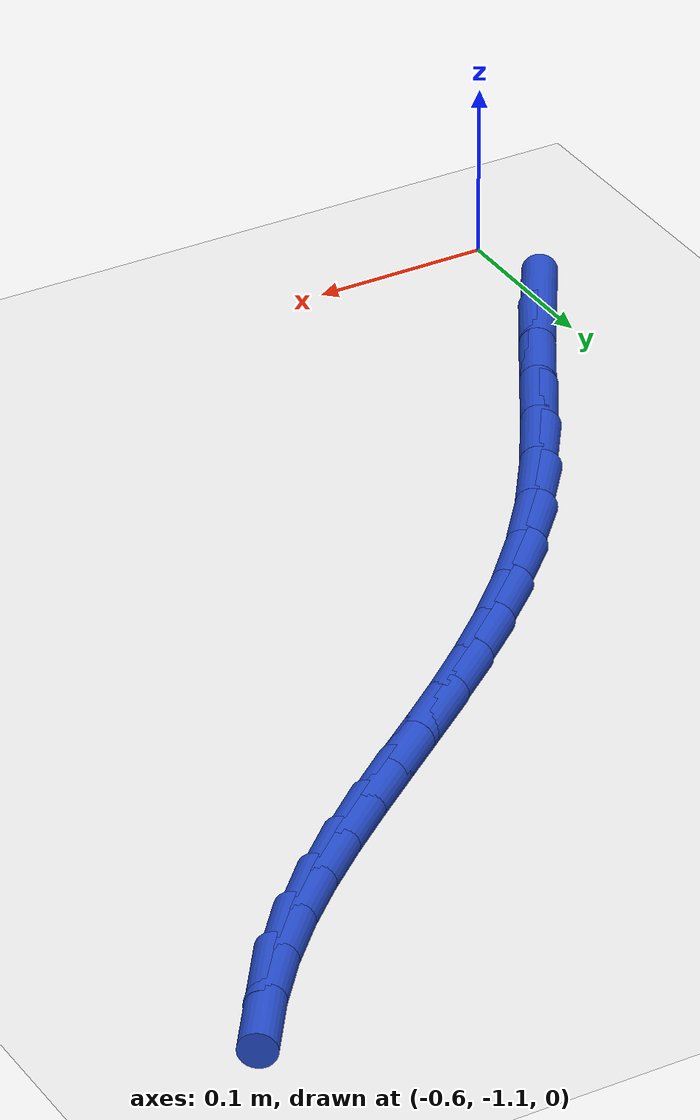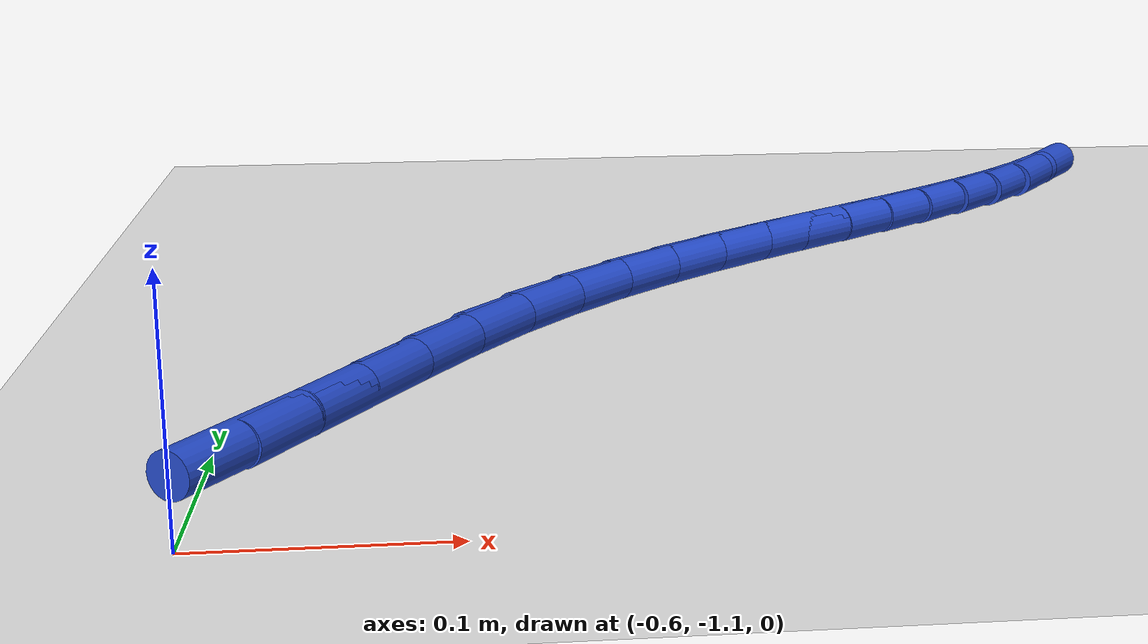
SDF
<sdf version="1.6">
 <world name="default">
  <model name="ground_plane">
   <static>1</static>
   <link name="link">
    <collision name="collision">
     <geometry><plane><normal>0 0 1</normal><size>100 100</size></plane></geometry>
     <surface><friction><ode><mu>100</mu><mu2>50</mu2></ode></friction></surface>
    </collision>
    <visual name="visual">
     <cast_shadows>0</cast_shadows>
     <geometry><plane><normal>0 0 1</normal><size>100 100</size></plane></geometry>
     <material>
      <script><uri>file://media/materials/scripts/gazebo.material</uri><name>Gazebo/WhiteGlow</name></script>
     </material>
    </visual>
   </link>
  </model>
  <model name="line">
   <link name="link_186">
    <pose>-0.5878791818076659 -1.0151785320322662 0.01 0 1.57 1.0141558520361984</pose>
    <collision name="collision">
     <geometry><cylinder><radius>0.01</radius><length>0.08</length></cylinder></geometry>
    </collision>
    <visual name="visual">
     <material>
      <script><name>Gazebo/Blue</name><uri>file://media/materials/scripts/gazebo.material</uri></script>
     </material>
     <geometry><cylinder><radius>0.01</radius><length>0.08</length></cylinder></geometry>
    </visual>
   </link>
   <link name="link_187">
    <pose>-0.5670468373107685 -0.9817010501285885 0.01 0 1.57 1.0414931777088834</pose>
    <collision name="collision">
     <geometry><cylinder><radius>0.01</radius><length>0.08</length></cylinder></geometry>
    </collision>
    <visual name="visual">
     <material>
      <script><name>Gazebo/Blue</name><uri>file://media/materials/scripts/gazebo.material</uri></script>
     </material>
     <geometry><cylinder><radius>0.01</radius><length>0.08</length></cylinder></geometry>
    </visual>
   </link>
   <link name="link_188">
    <pose>-0.5462329302216617 -0.946120585357278 0.01 0 1.57 1.0434819271737397</pose>
    <collision name="collision">
     <geometry><cylinder><radius>0.01</radius><length>0.08</length></cylinder></geometry>
    </collision>
    <visual name="visual">
     <material>
      <script><name>Gazebo/Blue</name><uri>file://media/materials/scripts/gazebo.material</uri></script>
     </material>
     <geometry><cylinder><radius>0.01</radius><length>0.08</length></cylinder></geometry>
    </visual>
   </link>
   <link name="link_189">
    <pose>-0.5250774824376451 -0.9097906885516662 0.01 0 1.57 1.0217468167690298</pose>
    <collision name="collision">
     <geometry><cylinder><radius>0.01</radius><length>0.08</length></cylinder></geometry>
    </collision>
    <visual name="visual">
     <material>
      <script><name>Gazebo/Blue</name><uri>file://media/materials/scripts/gazebo.material</uri></script>
     </material>
     <geometry><cylinder><radius>0.01</radius><length>0.08</length></cylinder></geometry>
    </visual>
   </link>
   <link name="link_190">
    <pose>-0.5032205158560176 -0.8740649105450847 0.01 0 1.57 0.9745189429742582</pose>
    <collision name="collision">
     <geometry><cylinder><radius>0.01</radius><length>0.08</length></cylinder></geometry>
    </collision>
    <visual name="visual">
     <material>
      <script><name>Gazebo/Blue</name><uri>file://media/materials/scripts/gazebo.material</uri></script>
     </material>
     <geometry><cylinder><radius>0.01</radius><length>0.08</length></cylinder></geometry>
    </visual>
   </link>
   <link name="link_191">
    <pose>-0.4803022315794225 -0.8402962837424923 0.01 0 1.57 0.9059938498803096</pose>
    <collision name="collision">
     <geometry><cylinder><radius>0.01</radius><length>0.08</length></cylinder></geometry>
    </collision>
    <visual name="visual">
     <material>
      <script><name>Gazebo/Blue</name><uri>file://media/materials/scripts/gazebo.material</uri></script>
     </material>
     <geometry><cylinder><radius>0.01</radius><length>0.08</length></cylinder></geometry>
    </visual>
   </link>
   <link name="link_192">
    <pose>-0.4561051971470262 -0.8094259845222211 0.01 0 1.57 0.8393393958492467</pose>
    <collision name="collision">
     <geometry><cylinder><radius>0.01</radius><length>0.08</length></cylinder></geometry>
    </collision>
    <visual name="visual">
     <material>
      <script><name>Gazebo/Blue</name><uri>file://media/materials/scripts/gazebo.material</uri></script>
     </material>
     <geometry><cylinder><radius>0.01</radius><length>0.08</length></cylinder></geometry>
    </visual>
   </link>
   <link name="link_193">
    <pose>-0.4308101050727596 -0.7812434418830296 0.01 0 1.57 0.7808206624488514</pose>
    <collision name="collision">
     <geometry><cylinder><radius>0.01</radius><length>0.08</length></cylinder></geometry>
    </collision>
    <visual name="visual">
     <material>
      <script><name>Gazebo/Blue</name><uri>file://media/materials/scripts/gazebo.material</uri></script>
     </material>
     <geometry><cylinder><radius>0.01</radius><length>0.08</length></cylinder></geometry>
    </visual>
   </link>
   <link name="link_194">
    <pose>-0.4046667080101439 -0.7553382987267271 0.01 0 1.57 0.732202121482039</pose>
    <collision name="collision">
     <geometry><cylinder><radius>0.01</radius><length>0.08</length></cylinder></geometry>
    </collision>
    <visual name="visual">
     <material>
      <script><name>Gazebo/Blue</name><uri>file://media/materials/scripts/gazebo.material</uri></script>
     </material>
     <geometry><cylinder><radius>0.01</radius><length>0.08</length></cylinder></geometry>
    </visual>
   </link>
   <link name="link_195">
    <pose>-0.37792475861269986 -0.731300197955122 0.01 0 1.57 0.694864423658524</pose>
    <collision name="collision">
     <geometry><cylinder><radius>0.01</radius><length>0.08</length></cylinder></geometry>
    </collision>
    <visual name="visual">
     <material>
      <script><name>Gazebo/Blue</name><uri>file://media/materials/scripts/gazebo.material</uri></script>
     </material>
     <geometry><cylinder><radius>0.01</radius><length>0.08</length></cylinder></geometry>
    </visual>
   </link>
   <link name="link_196">
    <pose>-0.3508340095339503 -0.7087187824700251 0.01 0 1.57 0.6698611970257466</pose>
    <collision name="collision">
     <geometry><cylinder><radius>0.01</radius><length>0.08</length></cylinder></geometry>
    </collision>
    <visual name="visual">
     <material>
      <script><name>Gazebo/Blue</name><uri>file://media/materials/scripts/gazebo.material</uri></script>
     </material>
     <geometry><cylinder><radius>0.01</radius><length>0.08</length></cylinder></geometry>
    </visual>
   </link>
   <link name="link_197">
    <pose>-0.3236442134274157 -0.6871836951732444 0.01 0 1.57 0.6580107111517219</pose>
    <collision name="collision">
     <geometry><cylinder><radius>0.01</radius><length>0.08</length></cylinder></geometry>
    </collision>
    <visual name="visual">
     <material>
      <script><name>Gazebo/Blue</name><uri>file://media/materials/scripts/gazebo.material</uri></script>
     </material>
     <geometry><cylinder><radius>0.01</radius><length>0.08</length></cylinder></geometry>
    </visual>
   </link>
   <link name="link_198">
    <pose>-0.2966051229466175 -0.6662845789665895 0.01 0 1.57 0.65997959142106</pose>
    <collision name="collision">
     <geometry><cylinder><radius>0.01</radius><length>0.08</length></cylinder></geometry>
    </collision>
    <visual name="visual">
     <material>
      <script><name>Gazebo/Blue</name><uri>file://media/materials/scripts/gazebo.material</uri></script>
     </material>
     <geometry><cylinder><radius>0.01</radius><length>0.08</length></cylinder></geometry>
    </visual>
   </link>
   <link name="link_199">
    <pose>-0.26996649074507656 -0.6456110767518692 0.01 0 1.57 0.6763228572072814</pose>
    <collision name="collision">
     <geometry><cylinder><radius>0.01</radius><length>0.08</length></cylinder></geometry>
    </collision>
    <visual name="visual">
     <material>
      <script><name>Gazebo/Blue</name><uri>file://media/materials/scripts/gazebo.material</uri></script>
     </material>
     <geometry><cylinder><radius>0.01</radius><length>0.08</length></cylinder></geometry>
    </visual>
   </link>
   <link name="link_200">
    <pose>-0.24397806947631548 -0.6247528314308937 0.01 0 1.57 0.7074521638882892</pose>
    <collision name="collision">
     <geometry><cylinder><radius>0.01</radius><length>0.08</length></cylinder></geometry>
    </collision>
    <visual name="visual">
     <material>
      <script><name>Gazebo/Blue</name><uri>file://media/materials/scripts/gazebo.material</uri></script>
     </material>
     <geometry><cylinder><radius>0.01</radius><length>0.08</length></cylinder></geometry>
    </visual>
   </link>
   <link name="link_201">
    <pose>-0.21888961179385483 -0.6032994859054711 0.01 0 1.57 0.7535120573348112</pose>
    <collision name="collision">
     <geometry><cylinder><radius>0.01</radius><length>0.08</length></cylinder></geometry>
    </collision>
    <visual name="visual">
     <material>
      <script><name>Gazebo/Blue</name><uri>file://media/materials/scripts/gazebo.material</uri></script>
     </material>
     <geometry><cylinder><radius>0.01</radius><length>0.08</length></cylinder></geometry>
    </visual>
   </link>
   <link name="link_202">
    <pose>-0.1949508703512161 -0.5808406830774113 0.01 0 1.57 0.8141605970587041</pose>
    <collision name="collision">
     <geometry><cylinder><radius>0.01</radius><length>0.08</length></cylinder></geometry>
    </collision>
    <visual name="visual">
     <material>
      <script><name>Gazebo/Blue</name><uri>file://media/materials/scripts/gazebo.material</uri></script>
     </material>
     <geometry><cylinder><radius>0.01</radius><length>0.08</length></cylinder></geometry>
    </visual>
   </link>
   <link name="link_203">
    <pose>-0.1724115978019201 -0.5569660658485229 0.01 0 1.57 0.8881301117560414</pose>
    <collision name="collision">
     <geometry><cylinder><radius>0.01</radius><length>0.08</length></cylinder></geometry>
    </collision>
    <visual name="visual">
     <material>
      <script><name>Gazebo/Blue</name><uri>file://media/materials/scripts/gazebo.material</uri></script>
     </material>
     <geometry><cylinder><radius>0.01</radius><length>0.08</length></cylinder></geometry>
    </visual>
   </link>
   <link name="link_204">
    <pose>-0.15151885473471816 -0.5312702841003928 0.01 0 1.57 0.9656239911195967</pose>
    <collision name="collision">
     <geometry><cylinder><radius>0.01</radius><length>0.08</length></cylinder></geometry>
    </collision>
    <visual name="visual">
     <material>
      <script><name>Gazebo/Blue</name><uri>file://media/materials/scripts/gazebo.material</uri></script>
     </material>
     <geometry><cylinder><radius>0.01</radius><length>0.08</length></cylinder></geometry>
    </visual>
   </link>
  </model>
 </world>
</sdf>
